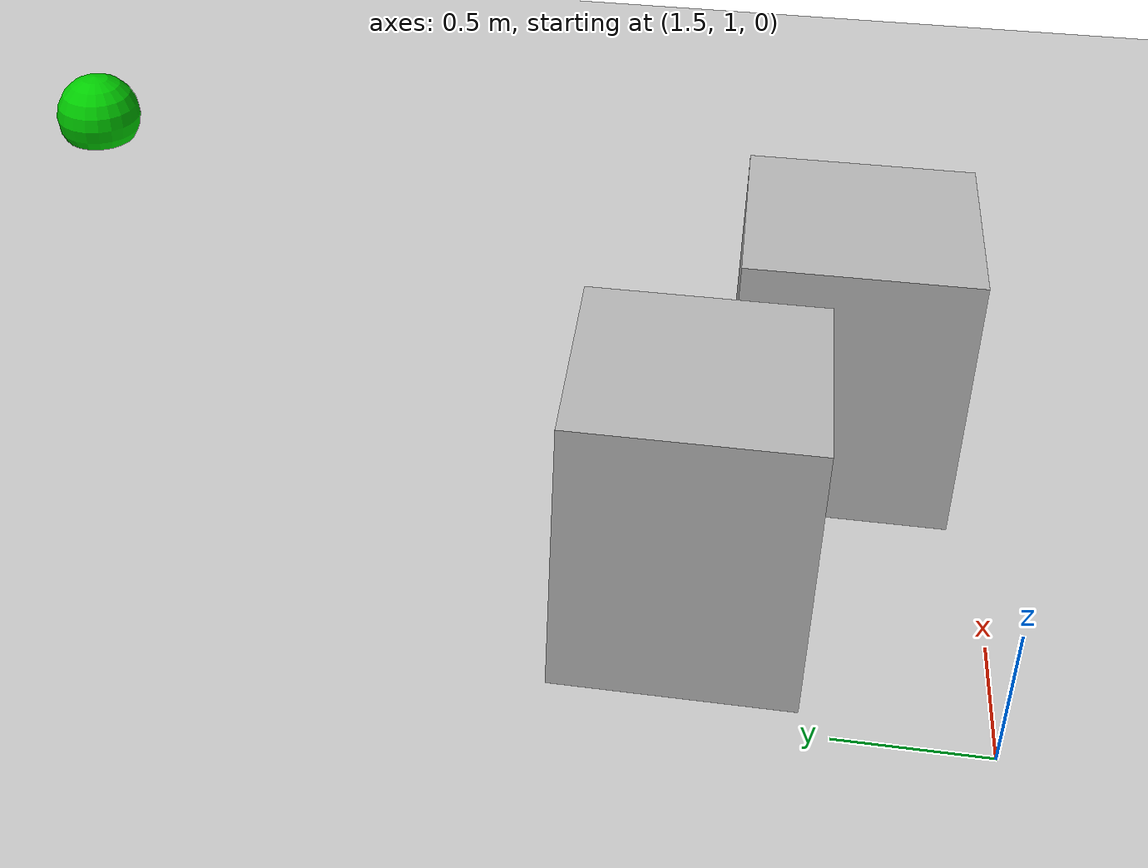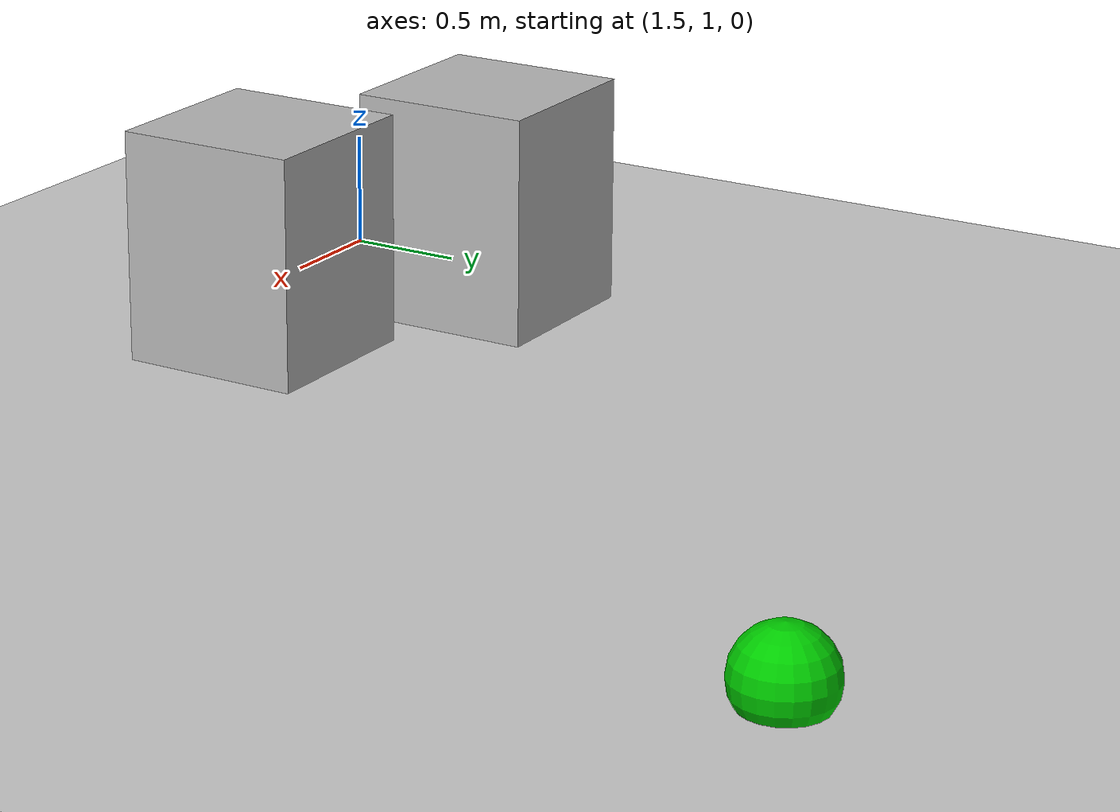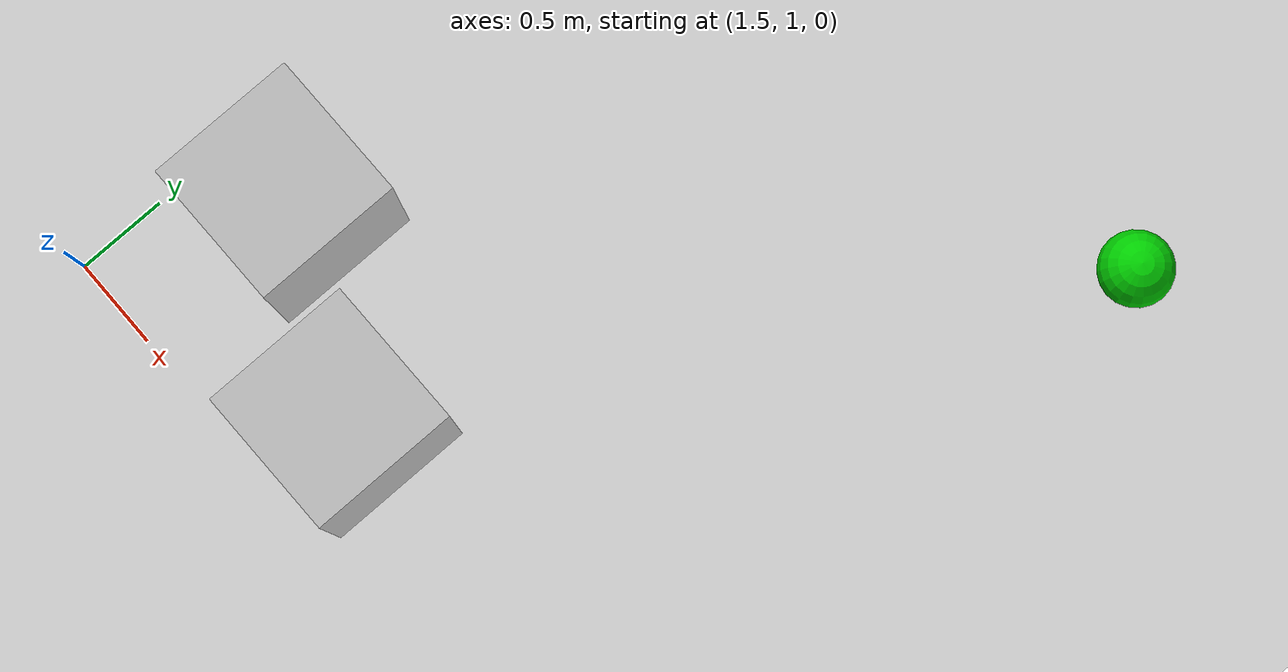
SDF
<?xml version="1.0" ?>
<sdf version="1.6">
  <world name="navigation_world">
    <include>
      <uri>model://ground_plane</uri>
    </include>
    <include>
      <uri>model://sun</uri>
    </include>

    <model name="goal_marker">
      <static>true</static>
      <pose>5 5 0.1 0 0 0</pose>
      <link name="link">
        <visual name="visual">
          <geometry>
            <sphere>
              <radius>0.2</radius>
            </sphere>
          </geometry>
          <material>
            <ambient>0 0.8 0 1</ambient>
            <diffuse>0 0.8 0 1</diffuse>
          </material>
        </visual>
      </link>
    </model>

    <model name="obstacle_1">
      <static>true</static>
      <pose>2 2 0.5 0 0 0</pose>
      <link name="link">
        <collision name="collision">
          <geometry>
            <box>
              <size>0.8 0.8 1.0</size>
            </box>
          </geometry>
        </collision>
        <visual name="visual">
          <geometry>
            <box>
              <size>0.8 0.8 1.0</size>
            </box>
          </geometry>
        </visual>
      </link>
    </model>

    <model name="obstacle_2">
      <static>true</static>
      <pose>3 1.5 0.5 0 0 0</pose>
      <link name="link">
        <collision name="collision">
          <geometry>
            <box>
              <size>0.8 0.8 1.0</size>
            </box>
          </geometry>
        </collision>
        <visual name="visual">
          <geometry>
            <box>
              <size>0.8 0.8 1.0</size>
            </box>
          </geometry>
        </visual>
      </link>
    </model>
  </world>
</sdf>
